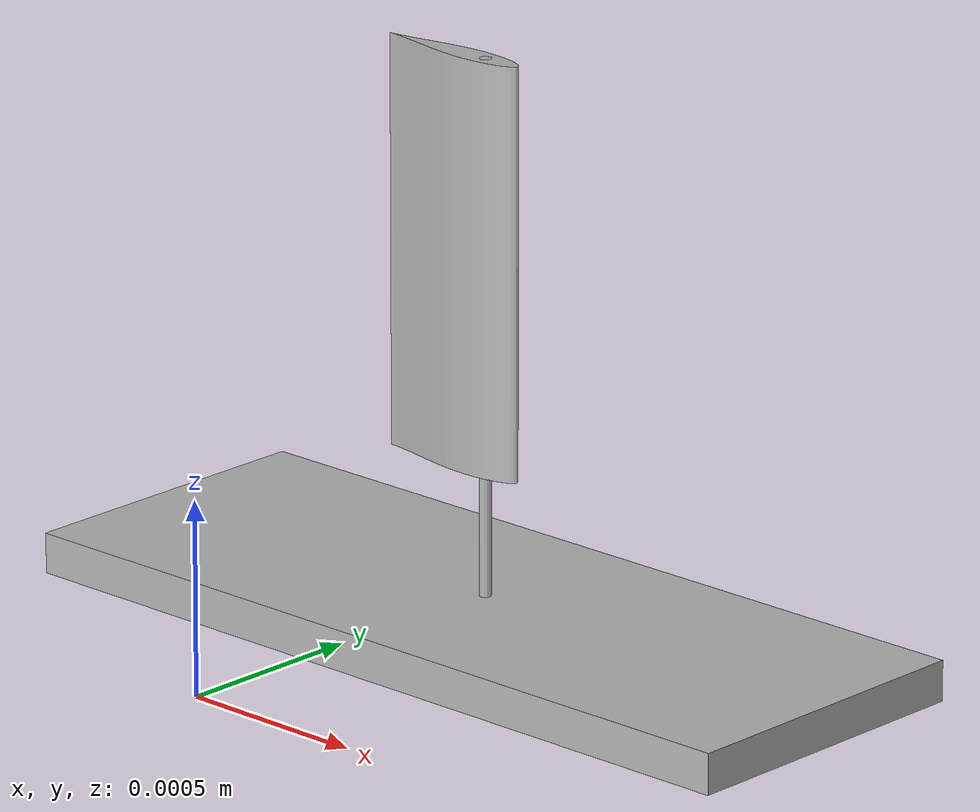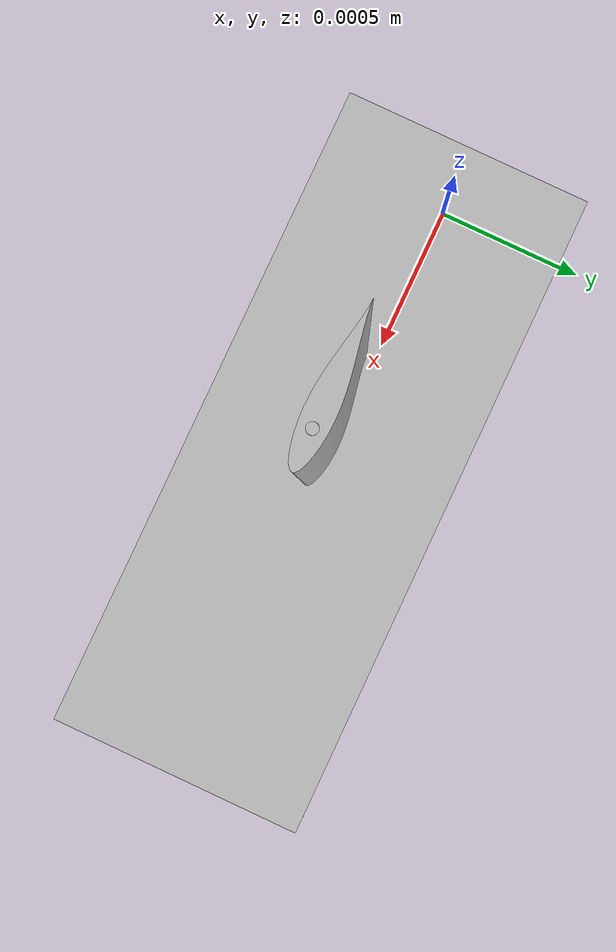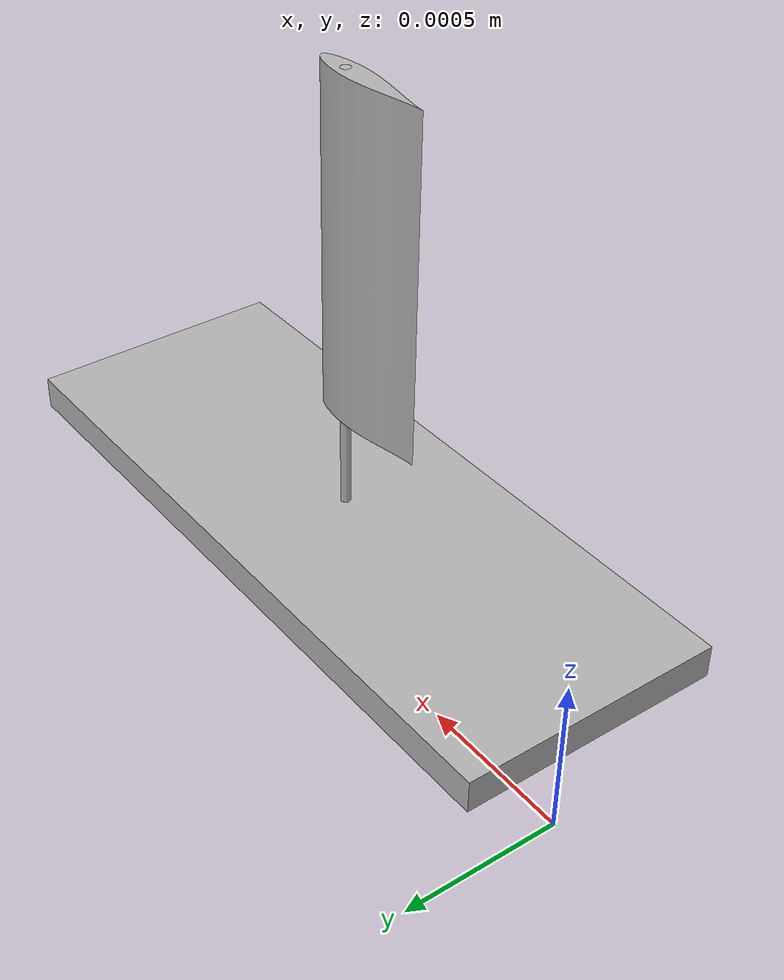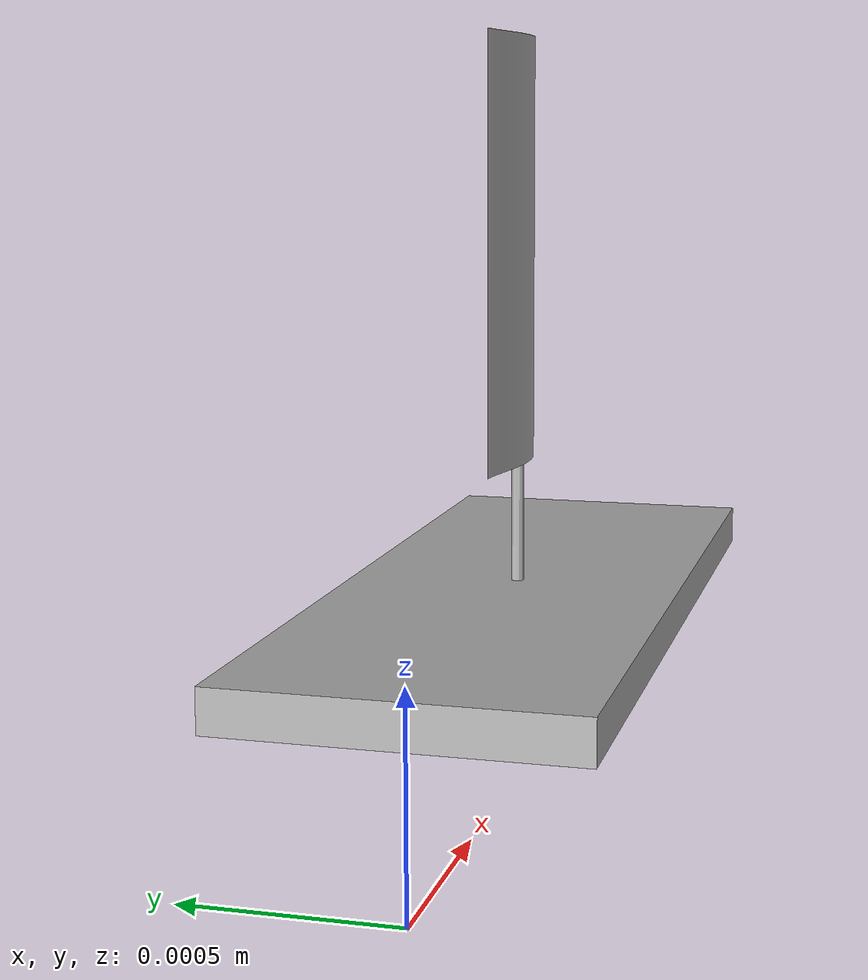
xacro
<?xml version="1.0" ?>
<robot name="raft" xmlns:xacro="http://www.ros.org/wiki/xacro">

<xacro:include filename="$(find raft_description)/urdf/materials.xacro" />
<xacro:include filename="$(find raft_description)/urdf/raft.trans" />
<xacro:include filename="$(find raft_description)/urdf/raft.gazebo" />
<link name="base_link">
  <inertial>
    <origin xyz="0.95 0.0 0.45" rpy="0 0 0"/>
    <mass value="86.01599999999999"/>
    <inertia ixx="4.6592" iyy="31.68256" izz="36.1984" ixy="0.0" iyz="0.0" ixz="0.0"/>
  </inertial>
  <visual>
    <origin xyz="0 0 0" rpy="0 0 0"/>
    <geometry>
      <mesh filename="package://raft_description/meshes/base_link.stl" scale="0.001 0.001 0.001"/>
    </geometry>
    <material name="silver"/>
  </visual>
  <collision>
    <origin xyz="0 0 0" rpy="0 0 0"/>
    <geometry>
      <mesh filename="package://raft_description/meshes/base_link.stl" scale="0.001 0.001 0.001"/>
    </geometry>
  </collision>
</link>

<link name="sail_link_1">
  <inertial>
    <origin xyz="-0.06425696919906188 4.4172629142338264e-17 -0.5000000000000011" rpy="0 0 0"/>
    <mass value="8.805002641619174"/>
    <inertia ixx="0.736395" iyy="0.800317" izz="0.069211" ixy="0.0" iyz="-0.0" ixz="0.0"/>
  </inertial>
  <visual>
    <origin xyz="-0.95 -0.0 -1.8" rpy="0 0 0"/>
    <geometry>
      <mesh filename="package://raft_description/meshes/sail_link_1.stl" scale="0.001 0.001 0.001"/>
    </geometry>
    <material name="silver"/>
  </visual>
  <collision>
    <origin xyz="-0.95 -0.0 -1.8" rpy="0 0 0"/>
    <geometry>
      <mesh filename="package://raft_description/meshes/sail_link_1.stl" scale="0.001 0.001 0.001"/>
    </geometry>
  </collision>
</link>

<link name="mast_link_1">
  <inertial>
    <origin xyz="3.3306690738754696e-16 -1.4210854715202004e-16 0.6499999999999995" rpy="0 0 0"/>
    <mass value="0.47048491580160784"/>
    <inertia ixx="0.066286" iyy="0.066286" izz="5.3e-05" ixy="0.0" iyz="-0.0" ixz="0.0"/>
  </inertial>
  <visual>
    <origin xyz="-0.95 -0.0 -0.5" rpy="0 0 0"/>
    <geometry>
      <mesh filename="package://raft_description/meshes/mast_link_1.stl" scale="0.001 0.001 0.001"/>
    </geometry>
    <material name="silver"/>
  </visual>
  <collision>
    <origin xyz="-0.95 -0.0 -0.5" rpy="0 0 0"/>
    <geometry>
      <mesh filename="package://raft_description/meshes/mast_link_1.stl" scale="0.001 0.001 0.001"/>
    </geometry>
  </collision>
</link>

<joint name="joint2" type="continuous">
  <origin xyz="0.0 0.0 1.3" rpy="0 0 0"/>
  <parent link="mast_link_1"/>
  <child link="sail_link_1"/>
  <axis xyz="0.0 0.0 1.0"/>
</joint>

<joint name="joint1" type="fixed">
  <origin xyz="0.95 0.0 0.5" rpy="0 0 0"/>
  <parent link="base_link"/>
  <child link="mast_link_1"/>
</joint>

</robot>

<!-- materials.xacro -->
<robot name="raft" xmlns:xacro="http://www.ros.org/wiki/xacro" >

<material name="silver">
  <color rgba="0.700 0.700 0.700 1.000"/>
</material>

</robot>

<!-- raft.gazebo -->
<robot name="raft" xmlns:xacro="http://www.ros.org/wiki/xacro" >

<xacro:property name="body_color" value="Gazebo/Silver" />

<gazebo>
  <plugin name="control" filename="libgazebo_ros_control.so"/>
</gazebo>
<gazebo reference="base_link">
  <material>${body_color}</material>
  <mu1>0.2</mu1>
  <mu2>0.2</mu2>
  <selfCollide>true</selfCollide>
  <gravity>true</gravity>
</gazebo>

<gazebo reference="sail_link_1">
  <material>${body_color}</material>
  <mu1>0.2</mu1>
  <mu2>0.2</mu2>
  <selfCollide>true</selfCollide>
</gazebo>

<gazebo reference="mast_link_1">
  <material>${body_color}</material>
  <mu1>0.2</mu1>
  <mu2>0.2</mu2>
  <selfCollide>true</selfCollide>
</gazebo>

</robot>
